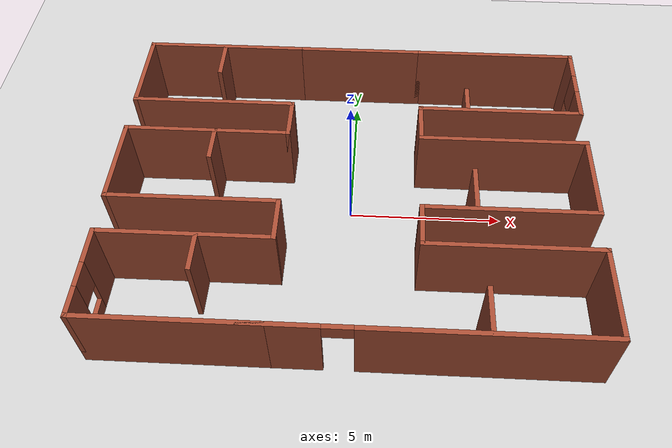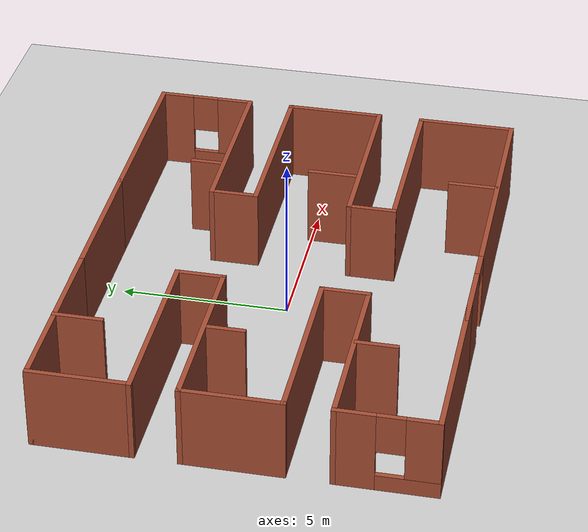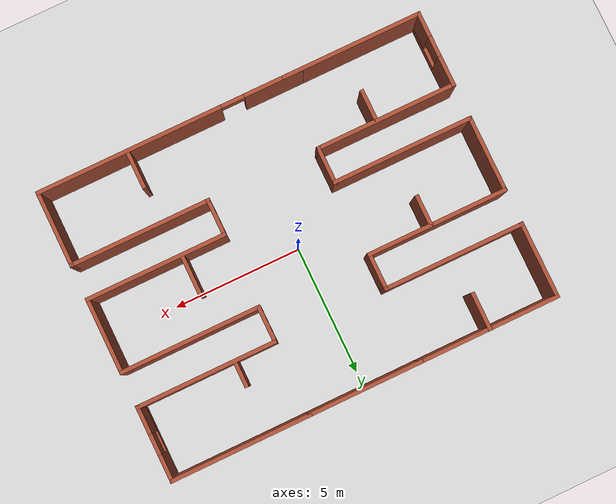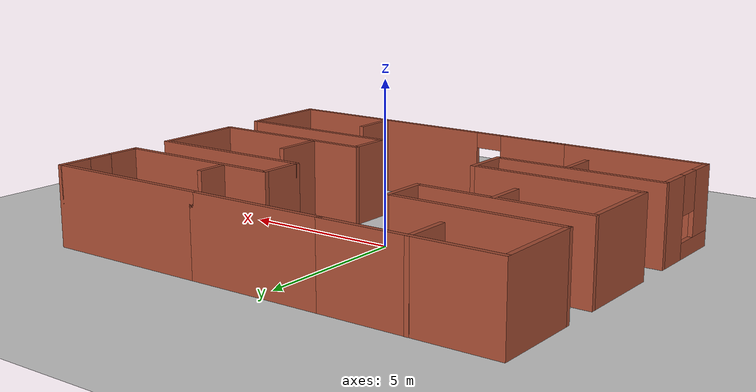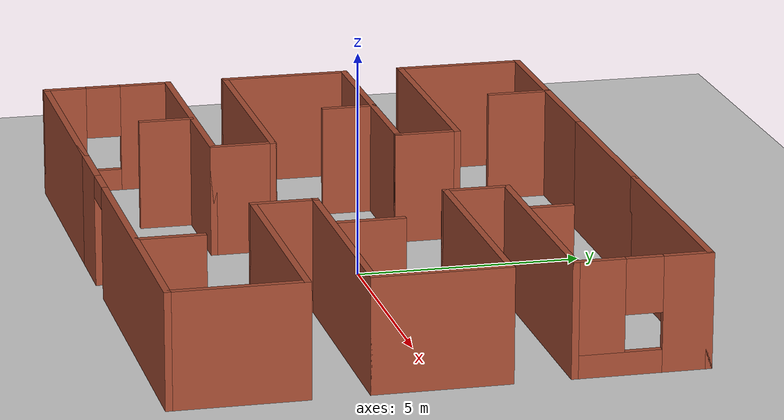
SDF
<sdf version="1.7">
 <world name="default">
  <light name="sun" type="directional">
   <pose>0 0 10 0 -0 0</pose>
   <diffuse>0.8 0.8 0.8 1</diffuse>
   <specular>0.2 0.2 0.2 1</specular>
   <attenuation>
    <range>1000</range>
    <constant>0.9</constant>
    <linear>0.01</linear>
    <quadratic>0.001</quadratic>
   </attenuation>
   <direction>-0.5 0.1 -0.9</direction>
   <spot><inner_angle>0</inner_angle><outer_angle>0</outer_angle><falloff>0</falloff></spot>
  </light>
  <model name="ground_plane">
   <static>1</static>
   <link name="link">
    <collision name="collision">
     <geometry><plane><normal>0 0 1</normal><size>100 100</size></plane></geometry>
     <surface>
      <contact><collide_bitmask>65535</collide_bitmask></contact>
      <friction><ode><mu>100</mu><mu2>50</mu2></ode></friction>
     </surface>
    </collision>
    <visual name="visual">
     <cast_shadows>0</cast_shadows>
     <geometry><plane><normal>0 0 1</normal><size>100 100</size></plane></geometry>
     <material>
      <script><uri>file://media/materials/scripts/gazebo.material</uri><name>Gazebo/Grey</name></script>
     </material>
    </visual>
   </link>
  </model>
  <gravity>0 0 -9.8</gravity>
  <magnetic_field>6e-06 2.3e-05 -4.2e-05</magnetic_field>
  <atmosphere type="adiabatic"/>
  <physics type="ode">
   <max_step_size>0.001</max_step_size>
   <real_time_factor>1</real_time_factor>
   <real_time_update_rate>1000</real_time_update_rate>
   <ode>
    <solver>
     <type>quick</type>
     <iters>150</iters>
     <precon_iters>0</precon_iters>
     <sor>1.4</sor>
     <use_dynamic_moi_rescaling>1</use_dynamic_moi_rescaling>
    </solver>
    <constraints>
     <cfm>0.00001</cfm>
     <erp>0.2</erp>
     <contact_max_correcting_vel>2000</contact_max_correcting_vel>
     <contact_surface_layer>0.01</contact_surface_layer>
    </constraints>
   </ode>
  </physics>
  <scene><ambient>0.4 0.4 0.4 1</ambient><background>0.7 0.7 0.7 1</background><shadows>1</shadows></scene>
  <spherical_coordinates>
   <surface_model>EARTH_WGS84</surface_model>
   <latitude_deg>0</latitude_deg>
   <longitude_deg>0</longitude_deg>
   <elevation>0</elevation>
   <heading_deg>0</heading_deg>
  </spherical_coordinates>
  <model name="map">
   <pose>0.050777 -0.013596 0 0 -0 0</pose>
   <link name="Wall_0">
    <collision name="Wall_0_Collision">
     <geometry><box><size>3 0.15 2.5</size></box></geometry>
     <pose>0 0 1.25 0 -0 0</pose>
    </collision>
    <visual name="Wall_0_Visual">
     <pose>0 0 1.25 0 -0 0</pose>
     <geometry><box><size>3 0.15 2.5</size></box></geometry>
     <material>
      <script><uri>file://media/materials/scripts/gazebo.material</uri><name>Gazebo/Bricks</name></script>
      <ambient>1 1 1 1</ambient>
     </material>
     <meta><layer>0</layer></meta>
    </visual>
    <pose>-7.525 -0.003164 0 0 -0 -1.5708</pose>
   </link>
   <link name="Wall_1">
    <collision name="Wall_1_Collision">
     <geometry><box><size>5.5 0.15 2.5</size></box></geometry>
     <pose>0 0 1.25 0 -0 0</pose>
    </collision>
    <visual name="Wall_1_Visual">
     <pose>0 0 1.25 0 -0 0</pose>
     <geometry><box><size>5.5 0.15 2.5</size></box></geometry>
     <material>
      <script><uri>file://media/materials/scripts/gazebo.material</uri><name>Gazebo/Bricks</name></script>
      <ambient>1 1 1 1</ambient>
     </material>
     <meta><layer>0</layer></meta>
    </visual>
    <pose>-4.85 -1.42816 0 0 -0 0</pose>
   </link>
   <link name="Wall_10">
    <collision name="Wall_10_Collision">
     <geometry><box><size>5.5 0.15 2.5</size></box></geometry>
     <pose>0 0 1.25 0 -0 0</pose>
    </collision>
    <visual name="Wall_10_Visual">
     <pose>0 0 1.25 0 -0 0</pose>
     <geometry><box><size>5.5 0.15 2.5</size></box></geometry>
     <material>
      <script><uri>file://media/materials/scripts/gazebo.material</uri><name>Gazebo/Bricks</name></script>
      <ambient>1 1 1 1</ambient>
     </material>
     <meta><layer>0</layer></meta>
    </visual>
    <pose>-4.85 1.42184 0 0 -0 0</pose>
   </link>
   <link name="Wall_11">
    <collision name="Wall_11_Collision">
     <geometry><box><size>1.5 0.15 2.5</size></box></geometry>
     <pose>0 0 1.25 0 -0 0</pose>
    </collision>
    <visual name="Wall_11_Visual">
     <pose>0 0 1.25 0 -0 0</pose>
     <geometry><box><size>1.5 0.15 2.5</size></box></geometry>
     <material>
      <script><uri>file://media/materials/scripts/gazebo.material</uri><name>Gazebo/Bricks</name></script>
      <ambient>1 1 1 1</ambient>
     </material>
     <meta><layer>0</layer></meta>
    </visual>
    <pose>-2.175 2.09684 0 0 -0 1.5708</pose>
   </link>
   <link name="Wall_12">
    <collision name="Wall_12_Collision">
     <geometry><box><size>5.5 0.15 2.5</size></box></geometry>
     <pose>0 0 1.25 0 -0 0</pose>
    </collision>
    <visual name="Wall_12_Visual">
     <pose>0 0 1.25 0 -0 0</pose>
     <geometry><box><size>5.5 0.15 2.5</size></box></geometry>
     <material>
      <script><uri>file://media/materials/scripts/gazebo.material</uri><name>Gazebo/Bricks</name></script>
      <ambient>1 1 1 1</ambient>
     </material>
     <meta><layer>0</layer></meta>
    </visual>
    <pose>-4.85 2.77184 0 0 -0 3.14159</pose>
   </link>
   <link name="Wall_13">
    <collision name="Wall_13_Collision">
     <geometry><box><size>3 0.15 2.5</size></box></geometry>
     <pose>0 0 1.25 0 -0 0</pose>
    </collision>
    <visual name="Wall_13_Visual">
     <pose>0 0 1.25 0 -0 0</pose>
     <geometry><box><size>3 0.15 2.5</size></box></geometry>
     <material>
      <script><uri>file://media/materials/scripts/gazebo.material</uri><name>Gazebo/Bricks</name></script>
      <ambient>1 1 1 1</ambient>
     </material>
     <meta><layer>0</layer></meta>
    </visual>
    <pose>-7.525 4.19684 0 0 -0 1.5708</pose>
   </link>
   <link name="Wall_14">
    <collision name="Wall_14_Collision">
     <geometry><box><size>5.5 0.15 2.5</size></box></geometry>
     <pose>0 0 1.25 0 -0 0</pose>
    </collision>
    <visual name="Wall_14_Visual">
     <pose>0 0 1.25 0 -0 0</pose>
     <geometry><box><size>5.5 0.15 2.5</size></box></geometry>
     <material>
      <script><uri>file://media/materials/scripts/gazebo.material</uri><name>Gazebo/Bricks</name></script>
      <ambient>1 1 1 1</ambient>
     </material>
     <meta><layer>0</layer></meta>
    </visual>
    <pose>-4.85 5.62184 0 0 -0 0</pose>
   </link>
   <link name="Wall_16">
    <collision name="Wall_16_Collision">
     <geometry><box><size>4.5 0.15 2.5</size></box></geometry>
     <pose>0 0 1.25 0 -0 0</pose>
    </collision>
    <visual name="Wall_16_Visual">
     <pose>0 0 1.25 0 -0 0</pose>
     <geometry><box><size>4.5 0.15 2.5</size></box></geometry>
     <material>
      <script><uri>file://media/materials/scripts/gazebo.material</uri><name>Gazebo/Bricks</name></script>
      <ambient>1 1 1 1</ambient>
     </material>
     <meta><layer>0</layer></meta>
    </visual>
    <pose>-0 5.62184 0 0 -0 0</pose>
   </link>
   <link name="Wall_17">
    <collision name="Wall_17_Collision">
     <geometry><box><size>5.5 0.15 2.5</size></box></geometry>
     <pose>0 0 1.25 0 -0 0</pose>
    </collision>
    <visual name="Wall_17_Visual">
     <pose>0 0 1.25 0 -0 0</pose>
     <geometry><box><size>5.5 0.15 2.5</size></box></geometry>
     <material>
      <script><uri>file://media/materials/scripts/gazebo.material</uri><name>Gazebo/Bricks</name></script>
      <ambient>1 1 1 1</ambient>
     </material>
     <meta><layer>0</layer></meta>
    </visual>
    <pose>4.85 5.62184 0 0 -0 0</pose>
   </link>
   <link name="Wall_18">
    <pose>7.525 4.19684 0 0 -0 -1.5708</pose>
    <visual name="Wall_18_Visual_0">
     <pose>-0.962088 0 1.25 0 -0 0</pose>
     <geometry><box><size>1.07582 0.15 2.5</size></box></geometry>
     <material>
      <script><uri>file://media/materials/scripts/gazebo.material</uri><name>Gazebo/Bricks</name></script>
      <ambient>1 1 1 1</ambient>
     </material>
     <meta><layer>0</layer></meta>
    </visual>
    <collision name="Wall_18_Collision_0">
     <geometry><box><size>1.07582 0.15 2.5</size></box></geometry>
     <pose>-0.962088 0 1.25 0 -0 0</pose>
    </collision>
    <visual name="Wall_18_Visual_1">
     <pose>0.537912 0 0.25 0 -0 0</pose>
     <geometry><box><size>1.92418 0.15 0.5</size></box></geometry>
     <material>
      <script><uri>file://media/materials/scripts/gazebo.material</uri><name>Gazebo/Bricks</name></script>
      <ambient>1 1 1 1</ambient>
     </material>
     <meta><layer>0</layer></meta>
    </visual>
    <collision name="Wall_18_Collision_1">
     <geometry><box><size>1.92418 0.15 0.5</size></box></geometry>
     <pose>0.537912 0 0.25 0 -0 0</pose>
    </collision>
    <visual name="Wall_18_Visual_2">
     <pose>0.937912 0 1.5 0 -0 0</pose>
     <geometry><box><size>1.12418 0.15 2</size></box></geometry>
     <material>
      <script><uri>file://media/materials/scripts/gazebo.material</uri><name>Gazebo/Bricks</name></script>
      <ambient>1 1 1 1</ambient>
     </material>
     <meta><layer>0</layer></meta>
    </visual>
    <collision name="Wall_18_Collision_2">
     <geometry><box><size>1.12418 0.15 2</size></box></geometry>
     <pose>0.937912 0 1.5 0 -0 0</pose>
    </collision>
    <visual name="Wall_18_Visual_3">
     <pose>-0.024177 0 1.9 0 -0 0</pose>
     <geometry><box><size>0.8 0.15 1.2</size></box></geometry>
     <material>
      <script><uri>file://media/materials/scripts/gazebo.material</uri><name>Gazebo/Bricks</name></script>
      <ambient>1 1 1 1</ambient>
     </material>
     <meta><layer>0</layer></meta>
    </visual>
    <collision name="Wall_18_Collision_3">
     <geometry><box><size>0.8 0.15 1.2</size></box></geometry>
     <pose>-0.024177 0 1.9 0 -0 0</pose>
    </collision>
   </link>
   <link name="Wall_19">
    <collision name="Wall_19_Collision">
     <geometry><box><size>5.5 0.15 2.5</size></box></geometry>
     <pose>0 0 1.25 0 -0 0</pose>
    </collision>
    <visual name="Wall_19_Visual">
     <pose>0 0 1.25 0 -0 0</pose>
     <geometry><box><size>5.5 0.15 2.5</size></box></geometry>
     <material>
      <script><uri>file://media/materials/scripts/gazebo.material</uri><name>Gazebo/Bricks</name></script>
      <ambient>1 1 1 1</ambient>
     </material>
     <meta><layer>0</layer></meta>
    </visual>
    <pose>4.85 2.77184 0 0 -0 3.14159</pose>
   </link>
   <link name="Wall_2">
    <collision name="Wall_2_Collision">
     <geometry><box><size>1.5 0.15 2.5</size></box></geometry>
     <pose>0 0 1.25 0 -0 0</pose>
    </collision>
    <visual name="Wall_2_Visual">
     <pose>0 0 1.25 0 -0 0</pose>
     <geometry><box><size>1.5 0.15 2.5</size></box></geometry>
     <material>
      <script><uri>file://media/materials/scripts/gazebo.material</uri><name>Gazebo/Bricks</name></script>
      <ambient>1 1 1 1</ambient>
     </material>
     <meta><layer>0</layer></meta>
    </visual>
    <pose>-2.175 -2.10316 0 0 -0 -1.5708</pose>
   </link>
   <link name="Wall_20">
    <collision name="Wall_20_Collision">
     <geometry><box><size>1.5 0.15 2.5</size></box></geometry>
     <pose>0 0 1.25 0 -0 0</pose>
    </collision>
    <visual name="Wall_20_Visual">
     <pose>0 0 1.25 0 -0 0</pose>
     <geometry><box><size>1.5 0.15 2.5</size></box></geometry>
     <material>
      <script><uri>file://media/materials/scripts/gazebo.material</uri><name>Gazebo/Bricks</name></script>
      <ambient>1 1 1 1</ambient>
     </material>
     <meta><layer>0</layer></meta>
    </visual>
    <pose>2.175 2.09684 0 0 -0 -1.5708</pose>
   </link>
   <link name="Wall_21">
    <collision name="Wall_21_Collision">
     <geometry><box><size>5.5 0.15 2.5</size></box></geometry>
     <pose>0 0 1.25 0 -0 0</pose>
    </collision>
    <visual name="Wall_21_Visual">
     <pose>0 0 1.25 0 -0 0</pose>
     <geometry><box><size>5.5 0.15 2.5</size></box></geometry>
     <material>
      <script><uri>file://media/materials/scripts/gazebo.material</uri><name>Gazebo/Bricks</name></script>
      <ambient>1 1 1 1</ambient>
     </material>
     <meta><layer>0</layer></meta>
    </visual>
    <pose>4.85 1.42184 0 0 -0 0</pose>
   </link>
   <link name="Wall_22">
    <collision name="Wall_22_Collision">
     <geometry><box><size>3 0.15 2.5</size></box></geometry>
     <pose>0 0 1.25 0 -0 0</pose>
    </collision>
    <visual name="Wall_22_Visual">
     <pose>0 0 1.25 0 -0 0</pose>
     <geometry><box><size>3 0.15 2.5</size></box></geometry>
     <material>
      <script><uri>file://media/materials/scripts/gazebo.material</uri><name>Gazebo/Bricks</name></script>
      <ambient>1 1 1 1</ambient>
     </material>
     <meta><layer>0</layer></meta>
    </visual>
    <pose>7.525 -0.003164 0 0 -0 -1.5708</pose>
   </link>
   <link name="Wall_23">
    <collision name="Wall_23_Collision">
     <geometry><box><size>5.5 0.15 2.5</size></box></geometry>
     <pose>0 0 1.25 0 -0 0</pose>
    </collision>
    <visual name="Wall_23_Visual">
     <pose>0 0 1.25 0 -0 0</pose>
     <geometry><box><size>5.5 0.15 2.5</size></box></geometry>
     <material>
      <script><uri>file://media/materials/scripts/gazebo.material</uri><name>Gazebo/Bricks</name></script>
      <ambient>1 1 1 1</ambient>
     </material>
     <meta><layer>0</layer></meta>
    </visual>
    <pose>4.85 -1.42816 0 0 -0 3.14159</pose>
   </link>
   <link name="Wall_24">
    <collision name="Wall_24_Collision">
     <geometry><box><size>1.5 0.15 2.5</size></box></geometry>
     <pose>0 0 1.25 0 -0 0</pose>
    </collision>
    <visual name="Wall_24_Visual">
     <pose>0 0 1.25 0 -0 0</pose>
     <geometry><box><size>1.5 0.15 2.5</size></box></geometry>
     <material>
      <script><uri>file://media/materials/scripts/gazebo.material</uri><name>Gazebo/Bricks</name></script>
      <ambient>1 1 1 1</ambient>
     </material>
     <meta><layer>0</layer></meta>
    </visual>
    <pose>2.175 -2.10316 0 0 -0 -1.5708</pose>
   </link>
   <link name="Wall_25">
    <collision name="Wall_25_Collision">
     <geometry><box><size>5.5 0.15 2.5</size></box></geometry>
     <pose>0 0 1.25 0 -0 0</pose>
    </collision>
    <visual name="Wall_25_Visual">
     <pose>0 0 1.25 0 -0 0</pose>
     <geometry><box><size>5.5 0.15 2.5</size></box></geometry>
     <material>
      <script><uri>file://media/materials/scripts/gazebo.material</uri><name>Gazebo/Bricks</name></script>
      <ambient>1 1 1 1</ambient>
     </material>
     <meta><layer>0</layer></meta>
    </visual>
    <pose>4.85 -2.77816 0 0 -0 0</pose>
   </link>
   <link name="Wall_26">
    <collision name="Wall_26_Collision">
     <geometry><box><size>3 0.15 2.5</size></box></geometry>
     <pose>0 0 1.25 0 -0 0</pose>
    </collision>
    <visual name="Wall_26_Visual">
     <pose>0 0 1.25 0 -0 0</pose>
     <geometry><box><size>3 0.15 2.5</size></box></geometry>
     <material>
      <script><uri>file://media/materials/scripts/gazebo.material</uri><name>Gazebo/Bricks</name></script>
      <ambient>1 1 1 1</ambient>
     </material>
     <meta><layer>0</layer></meta>
    </visual>
    <pose>7.525 -4.20316 0 0 -0 -1.5708</pose>
   </link>
   <link name="Wall_27">
    <pose>2.35 -5.62816 0 0 -0 3.14159</pose>
    <visual name="Wall_27_Visual_0">
     <pose>-1.6106 0 1.25 0 -0 0</pose>
     <geometry><box><size>7.27881 0.15 2.5</size></box></geometry>
     <material>
      <script><uri>file://media/materials/scripts/gazebo.material</uri><name>Gazebo/Bricks</name></script>
      <ambient>1 1 1 1</ambient>
     </material>
     <meta><layer>0</layer></meta>
    </visual>
    <collision name="Wall_27_Collision_0">
     <geometry><box><size>7.27881 0.15 2.5</size></box></geometry>
     <pose>-1.6106 0 1.25 0 -0 0</pose>
    </collision>
    <visual name="Wall_27_Visual_1">
     <pose>4.0894 0 1.25 0 -0 0</pose>
     <geometry><box><size>2.32119 0.15 2.5</size></box></geometry>
     <material>
      <script><uri>file://media/materials/scripts/gazebo.material</uri><name>Gazebo/Bricks</name></script>
      <ambient>1 1 1 1</ambient>
     </material>
     <meta><layer>0</layer></meta>
    </visual>
    <collision name="Wall_27_Collision_1">
     <geometry><box><size>2.32119 0.15 2.5</size></box></geometry>
     <pose>4.0894 0 1.25 0 -0 0</pose>
    </collision>
    <visual name="Wall_27_Visual_2">
     <pose>2.4788 0 2.25 0 -0 0</pose>
     <geometry><box><size>0.9 0.15 0.5</size></box></geometry>
     <material>
      <script><uri>file://media/materials/scripts/gazebo.material</uri><name>Gazebo/Bricks</name></script>
      <ambient>1 1 1 1</ambient>
     </material>
     <meta><layer>0</layer></meta>
    </visual>
    <collision name="Wall_27_Collision_2">
     <geometry><box><size>0.9 0.15 0.5</size></box></geometry>
     <pose>2.4788 0 2.25 0 -0 0</pose>
    </collision>
   </link>
   <link name="Wall_29">
    <collision name="Wall_29_Collision">
     <geometry><box><size>1.25 0.15 2.5</size></box></geometry>
     <pose>0 0 1.25 0 -0 0</pose>
    </collision>
    <visual name="Wall_29_Visual">
     <pose>0 0 1.25 0 -0 0</pose>
     <geometry><box><size>1.25 0.15 2.5</size></box></geometry>
     <material>
      <script><uri>file://media/materials/scripts/gazebo.material</uri><name>Gazebo/Bricks</name></script>
      <ambient>1 1 1 1</ambient>
     </material>
     <meta><layer>0</layer></meta>
    </visual>
    <pose>-4.59498 0.856712 0 0 -0 -1.5708</pose>
   </link>
   <link name="Wall_3">
    <collision name="Wall_3_Collision">
     <geometry><box><size>5.5 0.15 2.5</size></box></geometry>
     <pose>0 0 1.25 0 -0 0</pose>
    </collision>
    <visual name="Wall_3_Visual">
     <pose>0 0 1.25 0 -0 0</pose>
     <geometry><box><size>5.5 0.15 2.5</size></box></geometry>
     <material>
      <script><uri>file://media/materials/scripts/gazebo.material</uri><name>Gazebo/Bricks</name></script>
      <ambient>1 1 1 1</ambient>
     </material>
     <meta><layer>0</layer></meta>
    </visual>
    <pose>-4.85 -2.77816 0 0 -0 3.14159</pose>
   </link>
   <link name="Wall_31">
    <collision name="Wall_31_Collision">
     <geometry><box><size>1.25 0.15 2.5</size></box></geometry>
     <pose>0 0 1.25 0 -0 0</pose>
    </collision>
    <visual name="Wall_31_Visual">
     <pose>0 0 1.25 0 -0 0</pose>
     <geometry><box><size>1.25 0.15 2.5</size></box></geometry>
     <material>
      <script><uri>file://media/materials/scripts/gazebo.material</uri><name>Gazebo/Bricks</name></script>
      <ambient>1 1 1 1</ambient>
     </material>
     <meta><layer>0</layer></meta>
    </visual>
    <pose>-4.47262 -3.39533 0 0 -0 -1.5708</pose>
   </link>
   <link name="Wall_33">
    <collision name="Wall_33_Collision">
     <geometry><box><size>1.5 0.15 2.5</size></box></geometry>
     <pose>0 0 1.25 0 -0 0</pose>
    </collision>
    <visual name="Wall_33_Visual">
     <pose>0 0 1.25 0 -0 0</pose>
     <geometry><box><size>1.5 0.15 2.5</size></box></geometry>
     <material>
      <script><uri>file://media/materials/scripts/gazebo.material</uri><name>Gazebo/Bricks</name></script>
      <ambient>1 1 1 1</ambient>
     </material>
     <meta><layer>0</layer></meta>
    </visual>
    <pose>-4.87029 4.95316 0 0 -0 -1.5708</pose>
   </link>
   <link name="Wall_35">
    <collision name="Wall_35_Collision">
     <geometry><box><size>1 0.15 2.5</size></box></geometry>
     <pose>0 0 1.25 0 -0 0</pose>
    </collision>
    <visual name="Wall_35_Visual">
     <pose>0 0 1.25 0 -0 0</pose>
     <geometry><box><size>1 0.15 2.5</size></box></geometry>
     <material>
      <script><uri>file://media/materials/scripts/gazebo.material</uri><name>Gazebo/Bricks</name></script>
      <ambient>1 1 1 1</ambient>
     </material>
     <meta><layer>0</layer></meta>
    </visual>
    <pose>3.75615 3.30004 0 0 -0 1.5708</pose>
   </link>
   <link name="Wall_37">
    <collision name="Wall_37_Collision">
     <geometry><box><size>1.5 0.15 2.5</size></box></geometry>
     <pose>0 0 1.25 0 -0 0</pose>
    </collision>
    <visual name="Wall_37_Visual">
     <pose>0 0 1.25 0 -0 0</pose>
     <geometry><box><size>1.5 0.15 2.5</size></box></geometry>
     <material>
      <script><uri>file://media/materials/scripts/gazebo.material</uri><name>Gazebo/Bricks</name></script>
      <ambient>1 1 1 1</ambient>
     </material>
     <meta><layer>0</layer></meta>
    </visual>
    <pose>3.84792 -0.610228 0 0 -0 1.5708</pose>
   </link>
   <link name="Wall_39">
    <collision name="Wall_39_Collision">
     <geometry><box><size>1.5 0.15 2.5</size></box></geometry>
     <pose>0 0 1.25 0 -0 0</pose>
    </collision>
    <visual name="Wall_39_Visual">
     <pose>0 0 1.25 0 -0 0</pose>
     <geometry><box><size>1.5 0.15 2.5</size></box></geometry>
     <material>
      <script><uri>file://media/materials/scripts/gazebo.material</uri><name>Gazebo/Bricks</name></script>
      <ambient>1 1 1 1</ambient>
     </material>
     <meta><layer>0</layer></meta>
    </visual>
    <pose>4.03147 -4.89286 0 0 -0 1.5708</pose>
   </link>
   <link name="Wall_4">
    <pose>-7.525 -4.20316 0 0 -0 -1.5708</pose>
    <visual name="Wall_4_Visual_0">
     <pose>-0.894752 0 1.25 0 -0 0</pose>
     <geometry><box><size>1.2105 0.15 2.5</size></box></geometry>
     <material>
      <script><uri>file://media/materials/scripts/gazebo.material</uri><name>Gazebo/Bricks</name></script>
      <ambient>1 1 1 1</ambient>
     </material>
     <meta><layer>0</layer></meta>
    </visual>
    <collision name="Wall_4_Collision_0">
     <geometry><box><size>1.2105 0.15 2.5</size></box></geometry>
     <pose>-0.894752 0 1.25 0 -0 0</pose>
    </collision>
    <visual name="Wall_4_Visual_1">
     <pose>0.605248 0 0.25 0 -0 0</pose>
     <geometry><box><size>1.7895 0.15 0.5</size></box></geometry>
     <material>
      <script><uri>file://media/materials/scripts/gazebo.material</uri><name>Gazebo/Bricks</name></script>
      <ambient>1 1 1 1</ambient>
     </material>
     <meta><layer>0</layer></meta>
    </visual>
    <collision name="Wall_4_Collision_1">
     <geometry><box><size>1.7895 0.15 0.5</size></box></geometry>
     <pose>0.605248 0 0.25 0 -0 0</pose>
    </collision>
    <visual name="Wall_4_Visual_2">
     <pose>1.00525 0 1.5 0 -0 0</pose>
     <geometry><box><size>0.989503 0.15 2</size></box></geometry>
     <material>
      <script><uri>file://media/materials/scripts/gazebo.material</uri><name>Gazebo/Bricks</name></script>
      <ambient>1 1 1 1</ambient>
     </material>
     <meta><layer>0</layer></meta>
    </visual>
    <collision name="Wall_4_Collision_2">
     <geometry><box><size>0.989503 0.15 2</size></box></geometry>
     <pose>1.00525 0 1.5 0 -0 0</pose>
    </collision>
    <visual name="Wall_4_Visual_3">
     <pose>0.110497 0 1.9 0 -0 0</pose>
     <geometry><box><size>0.8 0.15 1.2</size></box></geometry>
     <material>
      <script><uri>file://media/materials/scripts/gazebo.material</uri><name>Gazebo/Bricks</name></script>
      <ambient>1 1 1 1</ambient>
     </material>
     <meta><layer>0</layer></meta>
    </visual>
    <collision name="Wall_4_Collision_3">
     <geometry><box><size>0.8 0.15 1.2</size></box></geometry>
     <pose>0.110497 0 1.9 0 -0 0</pose>
    </collision>
   </link>
   <link name="Wall_6">
    <collision name="Wall_6_Collision">
     <geometry><box><size>5.5 0.15 2.5</size></box></geometry>
     <pose>0 0 1.25 0 -0 0</pose>
    </collision>
    <visual name="Wall_6_Visual">
     <pose>0 0 1.25 0 -0 0</pose>
     <geometry><box><size>5.5 0.15 2.5</size></box></geometry>
     <material>
      <script><uri>file://media/materials/scripts/gazebo.material</uri><name>Gazebo/Bricks</name></script>
      <ambient>1 1 1 1</ambient>
     </material>
     <meta><layer>0</layer></meta>
    </visual>
    <pose>-4.85 -5.62816 0 0 -0 0</pose>
   </link>
   <static>1</static>
  </model>
 </world>
</sdf>
